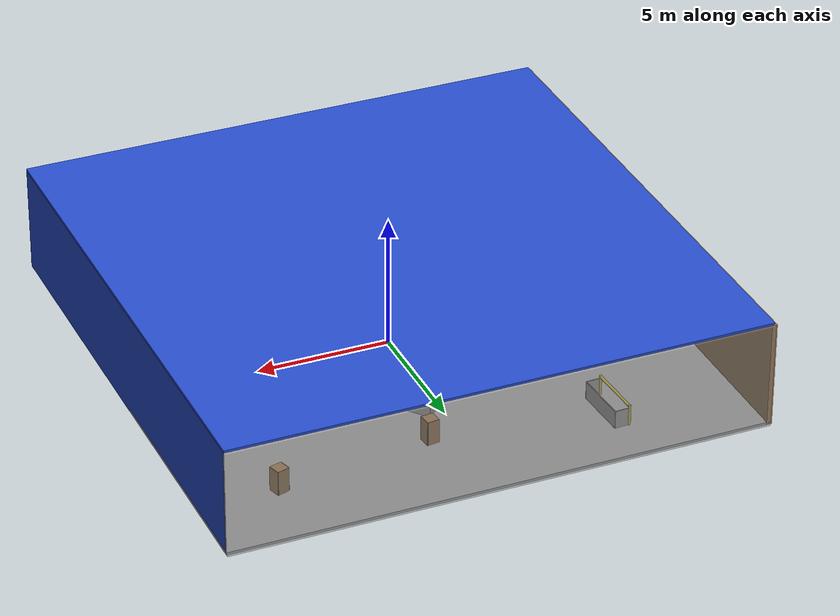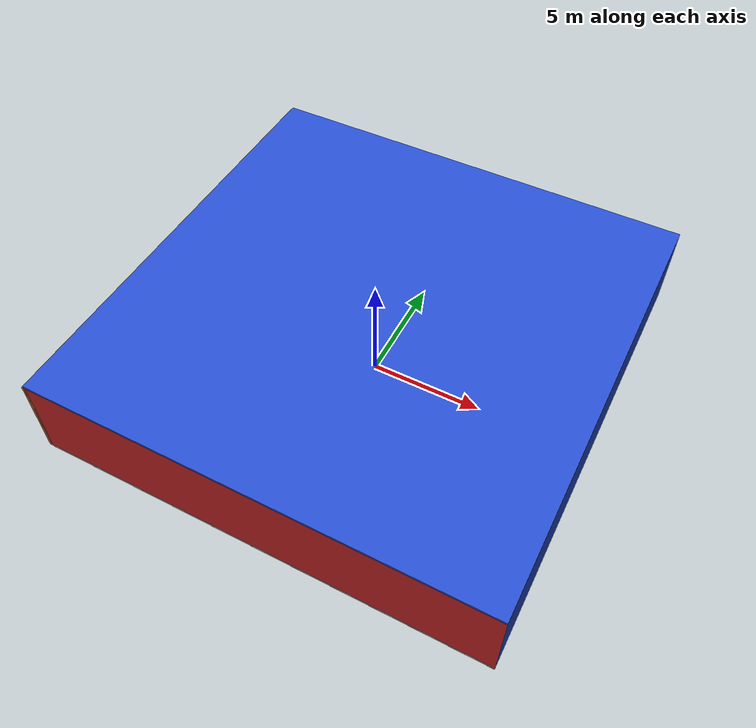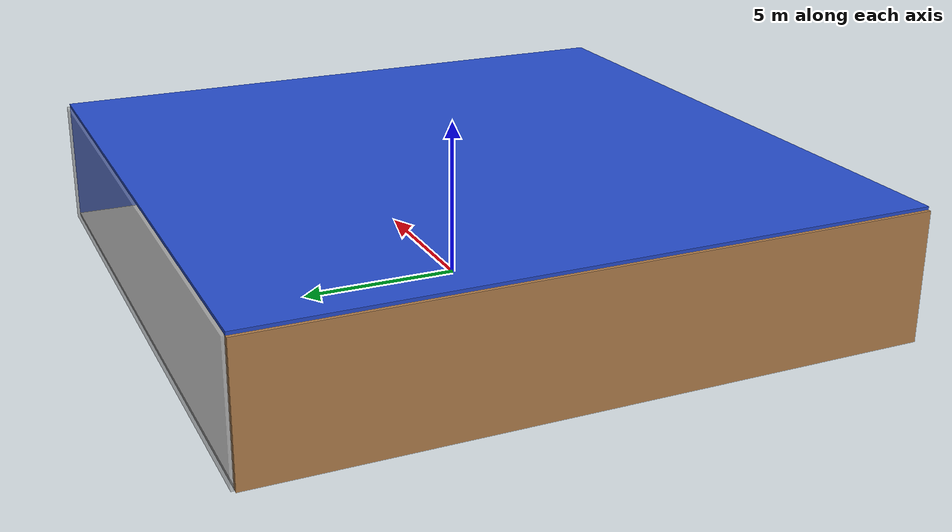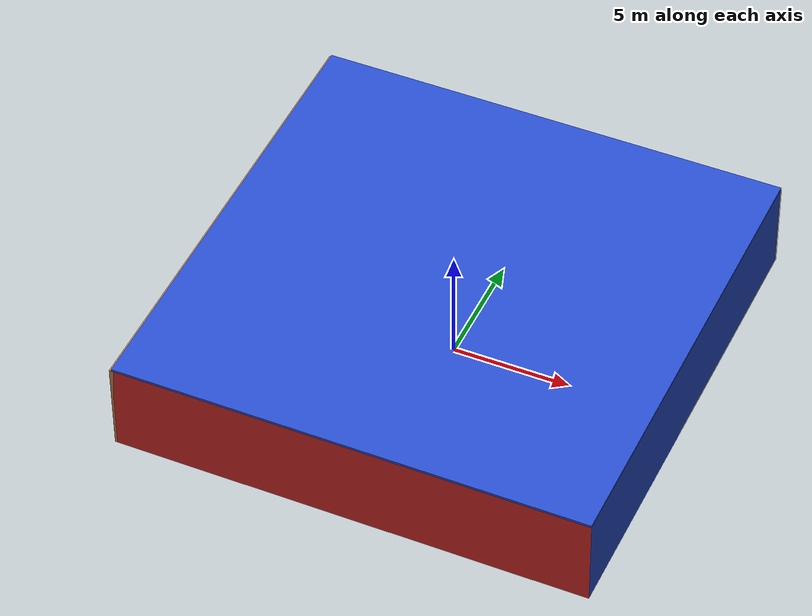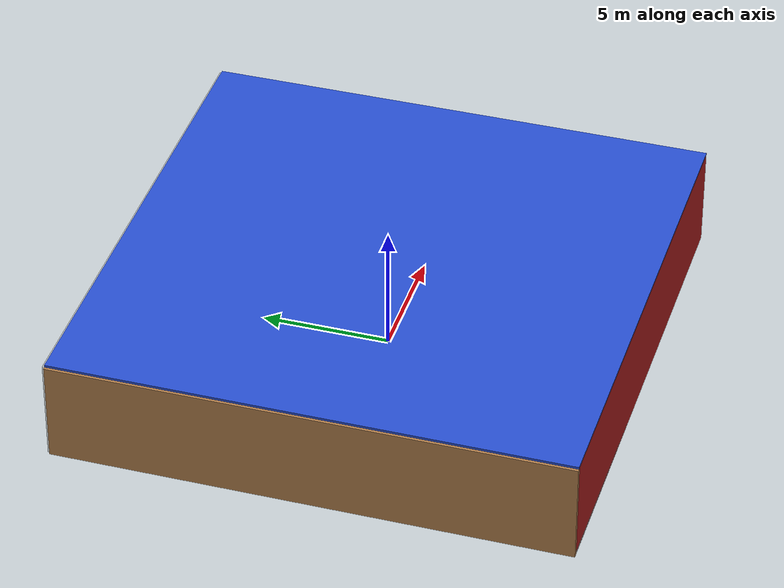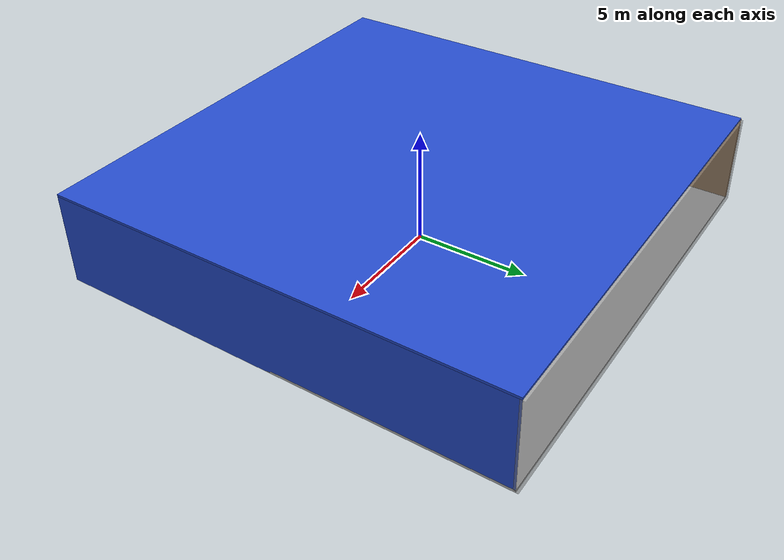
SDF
<sdf version="1.4">
 <world name="default">
  <physics type="ode">
   <max_step_size>0.001</max_step_size>
   <real_time_factor>1</real_time_factor>
   <real_time_update_rate>1000</real_time_update_rate>
   <gravity>0 0 -9.8</gravity>
  </physics>
  <scene><ambient>0.4 0.4 0.4 1</ambient><background>0.7 0.7 0.7 1</background><shadows>1</shadows></scene>
  <model name="Surrounding">
   <static>1</static>
   <link name="Ceiling">
    <collision name="Ceiling_Collision"><geometry><box><size>20 20 0.1</size></box></geometry></collision>
    <visual name="Ceiling_Visual">
     <geometry><box><size>20 20 0.1</size></box></geometry>
     <material>
      <script><uri>file://media/materials/scripts/gazebo.material</uri><name>Gazebo/BlueGlow</name></script>
     </material>
    </visual>
    <pose>0 0 4.05 0 0 0</pose>
   </link>
   <link name="Wall_South">
    <collision name="Wall_South_Collision">
     <geometry><box><size>20 0 4</size></box></geometry>
     <pose>0 0 2 0 -0 0</pose>
    </collision>
    <visual name="Wall_South_Visual">
     <pose>0 0 2 0 -0 0</pose>
     <geometry><box><size>20 0 4</size></box></geometry>
     <material>
      <script><uri>file://media/materials/scripts/gazebo.material</uri><name>Gazebo/RedBright</name></script>
     </material>
    </visual>
    <velocity_decay><linear>0</linear><angular>0</angular></velocity_decay>
    <pose>0 -10 0 0 -0 0</pose>
   </link>
   <link name="Wall_East">
    <collision name="Wall_21_Collision">
     <geometry><box><size>20 0 4</size></box></geometry>
     <pose>0 0 2 0 -0 0</pose>
    </collision>
    <visual name="Wall_21_Visual">
     <pose>0 0 2 0 -0 0</pose>
     <geometry><box><size>20 0 4</size></box></geometry>
     <material>
      <script><uri>file://media/materials/scripts/gazebo.material</uri><name>Gazebo/Blue</name></script>
     </material>
    </visual>
    <velocity_decay><linear>0</linear><angular>0</angular></velocity_decay>
    <pose>10 0 0 0 -0 1.5708</pose>
   </link>
   <link name="Wall_North">
    <collision name="Wall_22_Collision">
     <geometry><box><size>20 0.2 4</size></box></geometry>
     <pose>0 0 2 0 -0 0</pose>
    </collision>
    <visual name="Wall_22_Visual">
     <pose>0 0 2 0 -0 0</pose>
     <geometry><box><size>20 0.2 4</size></box></geometry>
     <material>
      <script><uri>file://media/materials/scripts/gazebo.material</uri><name>Gazebo/GreyTransparent</name></script>
     </material>
    </visual>
    <velocity_decay><linear>0</linear><angular>0</angular></velocity_decay>
    <pose>0 10 0 0 -0 0</pose>
   </link>
   <link name="Wall_West">
    <collision name="Wall_23_Collision">
     <geometry><box><size>20 0.2 4</size></box></geometry>
     <pose>0 0 2 0 -0 0</pose>
    </collision>
    <visual name="Wall_23_Visual">
     <pose>0 0 2 0 -0 0</pose>
     <geometry><box><size>20 0.2 4</size></box></geometry>
     <material>
      <script><uri>file://media/materials/scripts/gazebo.material</uri><name>Gazebo/WoodFloor</name></script>
     </material>
    </visual>
    <velocity_decay><linear>0</linear><angular>0</angular></velocity_decay>
    <pose>-10 0 0 0 0 -1.5708</pose>
   </link>
   <link name="Ground_link">
    <collision name="collision">
     <pose>0 0 .05 0 -0 0</pose>
     <geometry><box><size>20 20 0.1</size></box></geometry>
    </collision>
    <visual name="visual">
     <pose>0 0 .05 0 -0 0</pose>
     <geometry><box><size>20 20 0.1</size></box></geometry>
     <material>
      <script><uri>file://media/materials/scripts/gazebo.material</uri><name>Gazebo/CloudySky</name></script>
     </material>
    </visual>
   </link>
   <static>1</static>
  </model>
  <spherical_coordinates>
   <surface_model>EARTH_WGS84</surface_model>
   <latitude_deg>0</latitude_deg>
   <longitude_deg>0</longitude_deg>
   <elevation>0</elevation>
   <heading_deg>0</heading_deg>
  </spherical_coordinates>
  <light name="lightball_0" type="diffuse">
   <diffuse>0.8 0.8 0.8 1</diffuse>
   <specular>0.2 0.2 0.2 1</specular>
   <attenuation>
    <range>100</range>
    <constant>0.7</constant>
    <linear>0.01</linear>
    <quadratic>0.001</quadratic>
   </attenuation>
   <direction>-0.5 0.1 -0.9</direction>
   <pose>2.79879914591 -9.92026860043 1.46240437916 0 0 0</pose>
  </light>
  <light name="lightball_1" type="diffuse">
   <diffuse>0.8 0.8 0.8 1</diffuse>
   <specular>0.2 0.2 0.2 1</specular>
   <attenuation>
    <range>100</range>
    <constant>0.7</constant>
    <linear>0.01</linear>
    <quadratic>0.001</quadratic>
   </attenuation>
   <direction>-0.5 0.1 -0.9</direction>
   <pose>9.54602682241 3.10634325073 2.01559744693 0 0 0</pose>
  </light>
  <light name="lightball_2" type="diffuse">
   <diffuse>0.8 0.8 0.8 1</diffuse>
   <specular>0.2 0.2 0.2 1</specular>
   <attenuation>
    <range>100</range>
    <constant>0.7</constant>
    <linear>0.01</linear>
    <quadratic>0.001</quadratic>
   </attenuation>
   <direction>-0.5 0.1 -0.9</direction>
   <pose>0.758463233321 1.46528569908 3.67963929525 0 0 0</pose>
  </light>
  <light name="lightball_3" type="diffuse">
   <diffuse>0.8 0.8 0.8 1</diffuse>
   <specular>0.2 0.2 0.2 1</specular>
   <attenuation>
    <range>100</range>
    <constant>0.7</constant>
    <linear>0.01</linear>
    <quadratic>0.001</quadratic>
   </attenuation>
   <direction>-0.5 0.1 -0.9</direction>
   <pose>-1.79992892288 -4.63472798552 2.53219950236 0 0 0</pose>
  </light>
  <light name="lightball_4" type="diffuse">
   <diffuse>0.8 0.8 0.8 1</diffuse>
   <specular>0.2 0.2 0.2 1</specular>
   <attenuation>
    <range>100</range>
    <constant>0.7</constant>
    <linear>0.01</linear>
    <quadratic>0.001</quadratic>
   </attenuation>
   <direction>-0.5 0.1 -0.9</direction>
   <pose>-9.24143020496 7.93557767863 3.75018293314 0 0 0</pose>
  </light>
  <light name="lightball_5" type="diffuse">
   <diffuse>0.8 0.8 0.8 1</diffuse>
   <specular>0.2 0.2 0.2 1</specular>
   <attenuation>
    <range>100</range>
    <constant>0.7</constant>
    <linear>0.01</linear>
    <quadratic>0.001</quadratic>
   </attenuation>
   <direction>-0.5 0.1 -0.9</direction>
   <pose>5.90951276679 3.91085391707 3.45664740929 0 0 0</pose>
  </light>
  <light name="lightball_6" type="diffuse">
   <diffuse>0.8 0.8 0.8 1</diffuse>
   <specular>0.2 0.2 0.2 1</specular>
   <attenuation>
    <range>100</range>
    <constant>0.7</constant>
    <linear>0.01</linear>
    <quadratic>0.001</quadratic>
   </attenuation>
   <direction>-0.5 0.1 -0.9</direction>
   <pose>0.318471347514 -0.628994363231 3.54104323274 0 0 0</pose>
  </light>
  <light name="lightball_7" type="diffuse">
   <diffuse>0.8 0.8 0.8 1</diffuse>
   <specular>0.2 0.2 0.2 1</specular>
   <attenuation>
    <range>100</range>
    <constant>0.7</constant>
    <linear>0.01</linear>
    <quadratic>0.001</quadratic>
   </attenuation>
   <direction>-0.5 0.1 -0.9</direction>
   <pose>-0.36381326142 2.68953535054 3.72460940883 0 0 0</pose>
  </light>
  <include><uri>model://cabinet</uri><pose>-6.61103064344 -5.12014008006 0 0 0 2.22598446487</pose></include>
  <include>
   <uri>model://robocup_3Dsim_goal</uri>
   <pose>-6.89348576759 0.601054083679 0 0 0 1.06529319733</pose>
  </include>
  <include>
   <uri>model://robocup_3Dsim_goal</uri>
   <pose>-5.43137122291 7.22502318903 0 0 0 0.0467732443542</pose>
  </include>
  <include>
   <uri>model://textured_shapes</uri>
   <pose>-0.583114122982 3.52422449274 0 0 0 2.25808849479</pose>
  </include>
  <include>
   <uri>model://robocup_3Dsim_goal</uri>
   <pose>1.19266614722 -1.15341547102 0 0 0 1.53596935873</pose>
  </include>
  <include>
   <uri>model://construction_cone</uri>
   <pose>1.81481271925 4.10519046115 0 0 0 2.25401671205</pose>
  </include>
  <include><uri>model://cabinet</uri><pose>1.21352701802 6.5102527554 0 0 0 0.123616710567</pose></include>
  <include>
   <uri>model://robocup_3Dsim_goal</uri>
   <pose>3.43969420272 -0.735842712794 0 0 0 2.99258375788</pose>
  </include>
  <include><uri>model://cabinet</uri><pose>7.05031508044 7.29082705819 0 0 0 1.84762753398</pose></include>
 </world>
</sdf>

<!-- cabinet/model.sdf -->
<sdf version="1.5">
  <model name="cabinet">
    <static>true</static>
    <link name="cabinet_bottom_plate">
      <inertial>
        <pose>0 0 -1 0 0 0</pose>
        <inertia>
          <ixx>2.050000</ixx>
          <ixy>0</ixy>
          <ixz>0</ixz>
          <iyy>2.050000</iyy>
          <iyz>0</iyz>
          <izz>2.050000</izz>
        </inertia>
        <mass>25.000000</mass>
      </inertial>
      <collision name="cabinet_bottom_plate_geom">
        <pose>0 0 0.010000 0 0 0</pose>
        <geometry>
          <box>
            <size>0.450000 0.450000 0.020000</size>
          </box>
        </geometry>
      </collision>
      <visual name="cabinet_bottom_plate_geom_visual">
        <pose>0 0 0.010000 0 0 0</pose>
        <geometry>
          <box>
            <size>0.450000 0.450000 0.020000</size>
          </box>
        </geometry>
        <material>
          <script>
            <uri>model://media/materials/scripts/gazebo.material</uri>
            <name>Gazebo/Wood</name>
          </script>
        </material>
      </visual>
      <collision name="cabinet_bottom_plate_geom_cabinet_back_plate">
        <pose>0.235000 0 0.510000 0 0 0</pose>
        <geometry>
          <box>
            <size>0.020000 0.450000 1.020000</size>
          </box>
        </geometry>
      </collision>
      <visual name="cabinet_bottom_plate_geom_cabinet_back_plate_visual">
        <pose>0.235000 0 0.510000 0 0 0</pose>
        <geometry>
          <box>
            <size>0.020000 0.450000 1.020000</size>
          </box>
        </geometry>
        <material>
          <script>
            <uri>model://media/materials/scripts/gazebo.material</uri>
            <name>Gazebo/Wood</name>
          </script>
        </material>
      </visual>
      <collision name="cabinet_bottom_plate_geom_cabinet_left_plate">
        <pose>0 0.235000 0.510000 0 0 0</pose>
        <geometry>
          <box>
            <size>0.450000 0.020000 1.020000</size>
          </box>
        </geometry>
      </collision>
      <visual name="cabinet_bottom_plate_geom_cabinet_left_plate_visual">
        <pose>0 0.235000 0.510000 0 0 0</pose>
        <geometry>
          <box>
            <size>0.450000 0.020000 1.020000</size>
          </box>
        </geometry>
        <material>
          <script>
            <uri>model://media/materials/scripts/gazebo.material</uri>
            <name>Gazebo/Wood</name>
          </script>
        </material>
      </visual>
      <collision name="cabinet_bottom_plate_geom_cabinet_middle_plate">
        <pose>0 0 0.510000 0 0 0</pose>
        <geometry>
          <box>
            <size>0.450000 0.450000 0.020000</size>
          </box>
        </geometry>
      </collision>
      <visual name="cabinet_bottom_plate_geom_cabinet_middle_plate_visual">
        <pose>0 0 0.510000 0 0 0</pose>
        <geometry>
          <box>
            <size>0.450000 0.450000 0.020000</size>
          </box>
        </geometry>
        <material>
          <script>
            <uri>model://media/materials/scripts/gazebo.material</uri>
            <name>Gazebo/Wood</name>
          </script>
        </material>
      </visual>
      <collision name="cabinet_bottom_plate_geom_cabinet_right_plate">
        <pose>0 -0.235000 0.510000 0 0 0</pose>
        <geometry>
          <box>
            <size>0.450000 0.020000 1.020000</size>
          </box>
        </geometry>
      </collision>
      <visual name="cabinet_bottom_plate_geom_cabinet_right_plate_visual">
        <pose>0 -0.235000 0.510000 0 0 0</pose>
        <geometry>
          <box>
            <size>0.450000 0.020000 1.020000</size>
          </box>
        </geometry>
        <material>
          <script>
            <uri>model://media/materials/scripts/gazebo.material</uri>
            <name>Gazebo/Wood</name>
          </script>
        </material>
      </visual>
      <collision name="cabinet_bottom_plate_geom_cabinet_top_plate">
        <pose>0 0 1.010000 0 0 0</pose>
        <geometry>
          <box>
            <size>0.450000 0.450000 0.020000</size>
          </box>
        </geometry>
      </collision>
      <visual name="cabinet_bottom_plate_geom_cabinet_top_plate_visual">
        <pose>0 0 1.010000 0 0 0</pose>
        <geometry>
          <box>
            <size>0.450000 0.450000 0.020000</size>
          </box>
        </geometry>
        <material>
          <script>
            <uri>model://media/materials/scripts/gazebo.material</uri>
            <name>Gazebo/Wood</name>
          </script>
        </material>
      </visual>
    </link>
  </model>
</sdf>

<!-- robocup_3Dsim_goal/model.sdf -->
<sdf version="1.5">
  <model name="robocup_3d_goal">
    <static>true</static>
    <link name="left_post">
      <pose>0 1.05 0.45 0 0 0</pose>
      <collision name="collision">
        <geometry>
          <cylinder>
            <radius>0.05</radius>
            <length>0.9</length>
          </cylinder>
        </geometry>
      </collision>
      <visual name="visual">
        <geometry>
          <cylinder>
            <radius>0.05</radius>
            <length>0.9</length>
          </cylinder>
        </geometry>
        <material>
          <script>
            <uri>file://media/materials/scripts/gazebo.material</uri>
            <name>Gazebo/ZincYellow</name>
          </script>
        </material>
      </visual>
    </link>
    <link name="left_support_horiz_lower">
      <pose>0.30 1.05 0.01 0 0 0</pose>
      <collision name="collision">
        <geometry>
          <box>
            <size>0.50 0.02 0.02</size>
          </box>
        </geometry>
      </collision>
      <visual name="visual">
        <geometry>
          <box>
            <size>0.50 0.02 0.02</size>
          </box>
        </geometry>
        <material>
          <script>
            <uri>file://media/materials/scripts/gazebo.material</uri>
            <name>Gazebo/White</name>
          </script>
        </material>
      </visual>
    </link>
    <link name="left_support_horiz_upper">
      <pose>0.30 1.05 0.79 0 0 0</pose>
      <collision name="collision">
        <geometry>
          <box>
            <size>0.50 0.02 0.02</size>
          </box>
        </geometry>
      </collision>
      <visual name="visual">
        <geometry>
          <box>
            <size>0.50 0.02 0.02</size>
          </box>
        </geometry>
        <material>
          <script>
            <uri>file://media/materials/scripts/gazebo.material</uri>
            <name>Gazebo/White</name>
          </script>
        </material>
      </visual>
    </link>
    <link name="left_support_vertical">
      <pose>0.56 1.05 0.4 0 1.5708 0</pose>
      <collision name="collision">
        <geometry>
          <box>
            <size>0.80 0.02 0.02</size>
          </box>
        </geometry>
      </collision>
      <visual name="visual">
        <geometry>
          <box>
            <size>0.80 0.02 0.02</size>
          </box>
        </geometry>
        <material>
          <script>
            <uri>file://media/materials/scripts/gazebo.material</uri>
            <name>Gazebo/White</name>
          </script>
        </material>
      </visual>
    </link>
    <link name="right_support_horiz_lower">
      <pose>0.30 -1.05 0.01 0 0 0</pose>
      <collision name="collision">
        <geometry>
          <box>
            <size>0.50 0.02 0.02</size>
          </box>
        </geometry>
      </collision>
      <visual name="visual">
        <geometry>
          <box>
            <size>0.50 0.02 0.02</size>
          </box>
        </geometry>
        <material>
          <script>
            <uri>file://media/materials/scripts/gazebo.material</uri>
            <name>Gazebo/White</name>
          </script>
        </material>
      </visual>
    </link>
    <link name="right_support_horiz_upper">
      <pose>0.30 -1.05 0.79 0 0 0</pose>
      <collision name="collision">
        <geometry>
          <box>
            <size>0.50 0.02 0.02</size>
          </box>
        </geometry>
      </collision>
      <visual name="visual">
        <geometry>
          <box>
            <size>0.50 0.02 0.02</size>
          </box>
        </geometry>
        <material>
          <script>
            <uri>file://media/materials/scripts/gazebo.material</uri>
            <name>Gazebo/White</name>
          </script>
        </material>
      </visual>
    </link>
    <link name="right_support_vertical">
      <pose>0.56 -1.05 0.4 0 1.5708 0</pose>
      <collision name="collision">
        <geometry>
          <box>
            <size>0.80 0.02 0.02</size>
          </box>
        </geometry>
      </collision>
      <visual name="visual">
        <geometry>
          <box>
            <size>0.80 0.02 0.02</size>
          </box>
        </geometry>
        <material>
          <script>
            <uri>file://media/materials/scripts/gazebo.material</uri>
            <name>Gazebo/White</name>
          </script>
        </material>
      </visual>
    </link>
    <link name="center_support_horiz_lower">
      <pose>0.56 0 0.01 0 1.5708 0</pose>
      <collision name="collision">
        <geometry>
          <box>
            <size>0.02 2.08 0.02</size>
          </box>
        </geometry>
      </collision>
      <visual name="visual">
        <geometry>
          <box>
            <size>0.02 2.08 0.02</size>
          </box>
        </geometry>
        <material>
          <script>
            <uri>file://media/materials/scripts/gazebo.material</uri>
            <name>Gazebo/White</name>
          </script>
        </material>
      </visual>
    </link>
    <link name="center_support_horiz_upper">
      <pose>0.56 0 0.79 0 1.5708 0</pose>
      <collision name="collision">
        <geometry>
          <box>
            <size>0.02 2.08 0.02</size>
          </box>
        </geometry>
      </collision>
      <visual name="visual">
        <geometry>
          <box>
            <size>0.02 2.08 0.02</size>
          </box>
        </geometry>
        <material>
          <script>
            <uri>file://media/materials/scripts/gazebo.material</uri>
            <name>Gazebo/White</name>
          </script>
        </material>
      </visual>
    </link>
    <link name="right_post">
      <pose>0 -1.05 0.45 0 0 0</pose>
      <collision name="collision">
        <geometry>
          <cylinder>
            <radius>0.05</radius>
            <length>0.9</length>
          </cylinder>
        </geometry>
      </collision>
      <visual name="visual">
        <geometry>
          <cylinder>
            <radius>0.05</radius>
            <length>0.9</length>
          </cylinder>
        </geometry>
        <material>
          <script>
            <uri>file://media/materials/scripts/gazebo.material</uri>
            <name>Gazebo/ZincYellow</name>
          </script>
        </material>
      </visual>
    </link>
    <link name="crossbar">
      <pose>0 0 0.85 1.57 1.57 0</pose>
      <collision name="collision">
        <geometry>
          <cylinder>
            <radius>0.05</radius>
            <length>2.0</length>
          </cylinder>
        </geometry>
      </collision>
      <visual name="visual">
        <geometry>
          <cylinder>
            <radius>0.05</radius>
            <length>2.0</length>
          </cylinder>
        </geometry>
        <material>
          <script>
            <uri>file://media/materials/scripts/gazebo.material</uri>
            <name>Gazebo/ZincYellow</name>
          </script>
        </material>
      </visual>
    </link>
    <link name="center_net">
      <pose>0.56 0 0.40 0 0 0</pose>
      <collision name="collision">
        <geometry>
          <box>
            <size>0.01 2.1 0.80</size>
          </box>
        </geometry>
      </collision>
      <visual name="visual">
        <geometry>
          <box>
            <size>0.01 2.1 0.80</size>
          </box>
        </geometry>
        <material>
          <script>
            <uri>model://../model_source/models/robocup09_spl_field/materials/scripts/</uri>
            <uri>model://../model_source/models/robocup09_spl_field/materials/textures/</uri>
            <name>RoboCup/Net</name>
          </script>
        </material>
      </visual>
    </link>
    <link name="left_net">
      <pose>0.30 1.05 0.40 0 0 0</pose>
      <collision name="collision">
        <geometry>
          <box>
            <size>0.50 0.01 0.76</size>
          </box>
        </geometry>
      </collision>
      <visual name="visual">
        <geometry>
          <box>
            <size>0.50 0.01 0.76</size>
          </box>
        </geometry>
        <material>
          <script>
            <uri>model://../model_source/models/robocup09_spl_field/materials/scripts/</uri>
            <uri>model://../model_source/models/robocup09_spl_field/materials/textures/</uri>
            <name>RoboCup/Net</name>
          </script>
        </material>
      </visual>
    </link>
    <link name="right_net">
      <pose>0.30 -1.05 0.40 0 0 0</pose>
      <collision name="collision">
        <geometry>
          <box>
            <size>0.50 0.01 0.76</size>
          </box>
        </geometry>
      </collision>
      <visual name="visual">
        <geometry>
          <box>
            <size>0.50 0.01 0.76</size>
          </box>
        </geometry>
        <material>
          <script>
            <uri>model://../model_source/models/robocup09_spl_field/materials/scripts/</uri>
            <uri>model://../model_source/models/robocup09_spl_field/materials/textures/</uri>
            <name>RoboCup/Net</name>
          </script>
        </material>
      </visual>
    </link>
  </model>
</sdf>

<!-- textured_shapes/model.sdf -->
<sdf version="1.6">
  <model name="textured_shapes">
    <pose>0 0 0.5 0 0 0</pose>
    <link name="box">
      <pose>0 -1.5 0 0 0 0</pose>
      <collision name="collision">
        <geometry>
          <box>
            <size>1 1 1</size>
          </box>
        </geometry>
      </collision>
      <visual name="visual">
        <geometry>
          <box>
            <size>1 1 1</size>
          </box>
        </geometry>
        <material>
          <script>
            <uri>model://../model_source/models/textured_shapes/materials/scripts</uri>
            <uri>model://../model_source/models/textured_shapes/materials/textures</uri>
            <name>TexturedShape/Squares</name>
          </script>
        </material>
      </visual>
    </link>
    <link name="sphere">
      <collision name="collision">
        <geometry>
          <sphere>
            <radius>0.5</radius>
          </sphere>
        </geometry>
      </collision>
      <visual name="visual">
        <geometry>
          <sphere>
            <radius>0.5</radius>
          </sphere>
        </geometry>
        <material>
          <script>
            <uri>model://../model_source/models/textured_shapes/materials/scripts</uri>
            <uri>model://../model_source/models/textured_shapes/materials/textures</uri>
            <name>TexturedShape/Squares</name>
          </script>
        </material>
      </visual>
    </link>
    <link name="cylinder">
      <pose>0 1.5 0 0 0 0</pose>
      <collision name="collision">
        <geometry>
          <cylinder>
            <radius>0.5</radius>
            <length>1</length>
          </cylinder>
        </geometry>
      </collision>
      <visual name="visual">
        <geometry>
          <cylinder>
            <radius>0.5</radius>
            <length>1</length>
          </cylinder>
        </geometry>
        <material>
          <script>
            <uri>model://../model_source/models/textured_shapes/materials/scripts</uri>
            <uri>model://../model_source/models/textured_shapes/materials/textures</uri>
            <name>TexturedShape/Squares</name>
          </script>
        </material>
      </visual>
    </link>
  </model>
</sdf>

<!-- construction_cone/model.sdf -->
<sdf version="1.5">
  <model name="Construction Cone">
    <link name="link">
      <collision name="collision">
        <geometry>
          <mesh>
            <scale>10 10 10</scale>
            <uri>file://isr-testbed/construction_cone/meshes/construction_cone.dae</uri>
          </mesh>
        </geometry>
      </collision>
      <visual name="visual">
        <geometry>
          <mesh>
            <scale>10 10 10</scale>
            <uri>file://isr-testbed/construction_cone/meshes/construction_cone.dae</uri>
          </mesh>
        </geometry>
      </visual>
    </link>
  </model>
</sdf>
